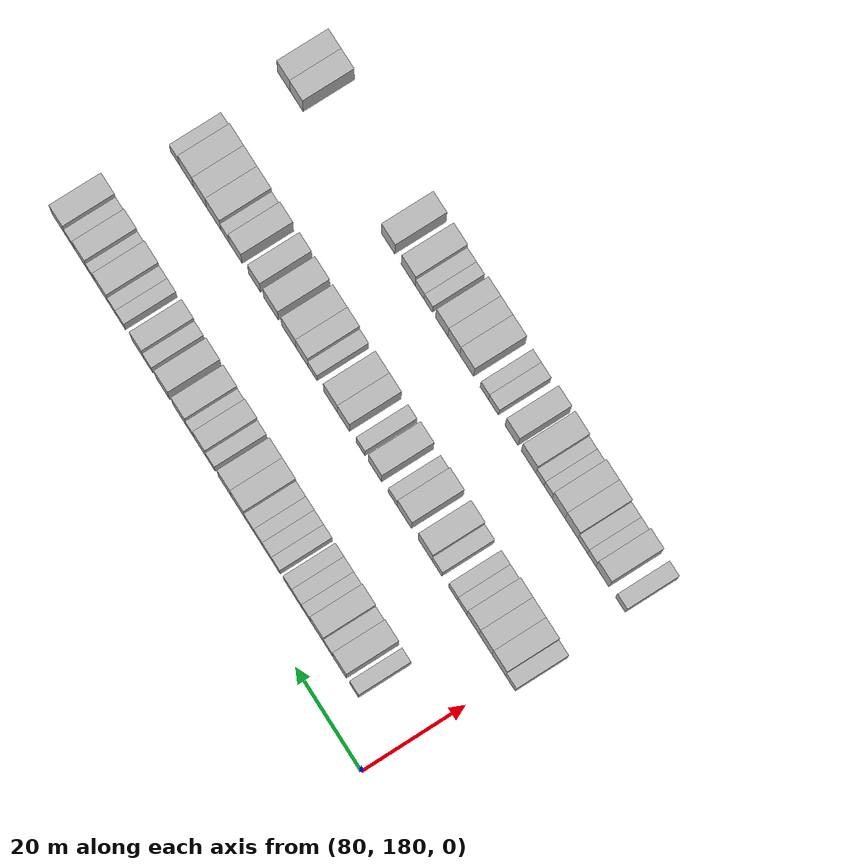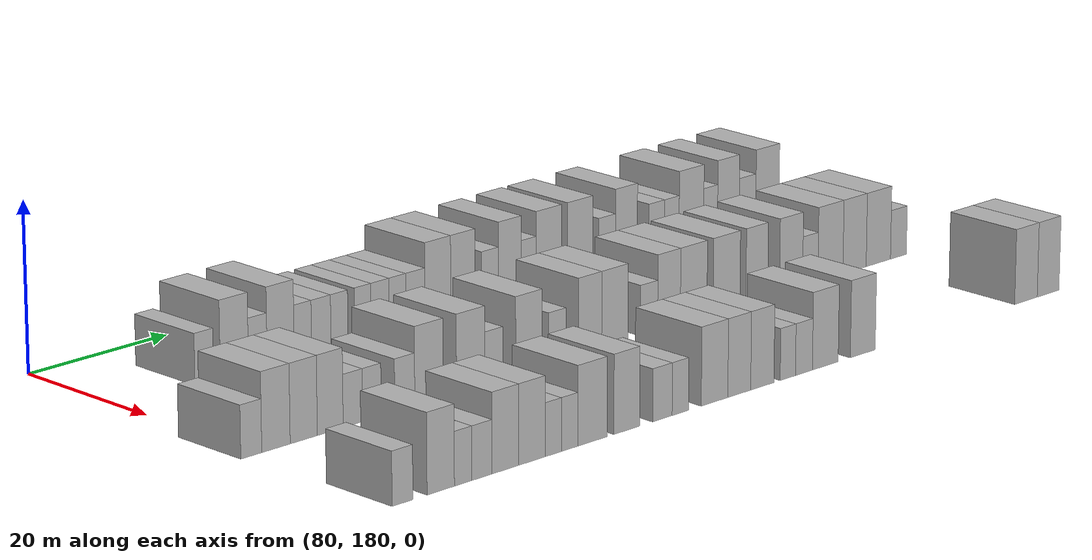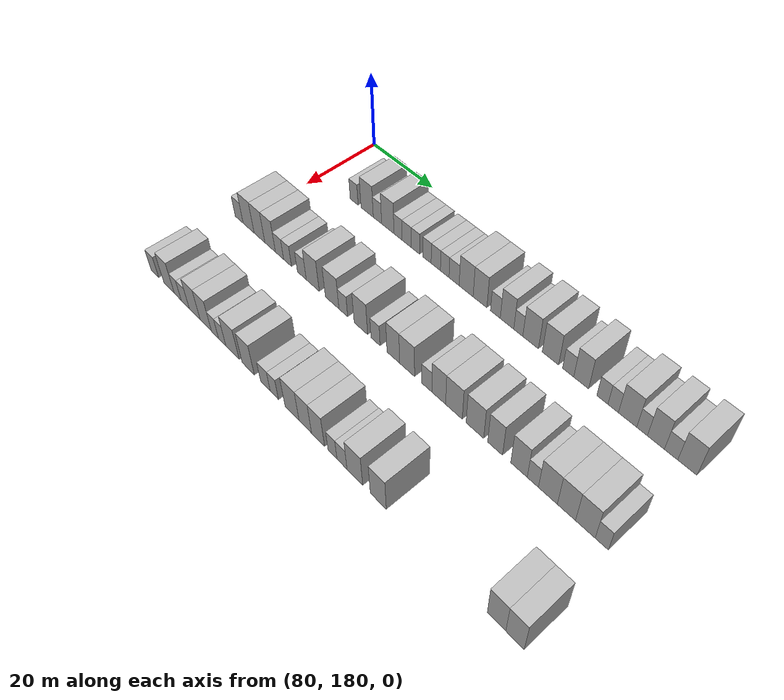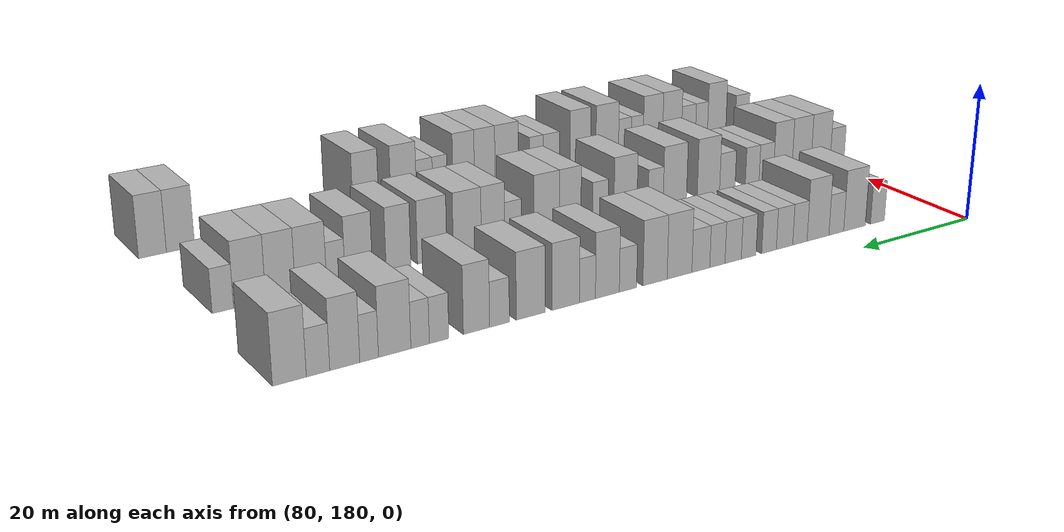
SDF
<sdf version="1.6">
 <world name="default">
  <model name="building_678">
   <static>1</static>
   <pose>91.0000 191.7139 0 0.000000 0.000000 0.000000</pose>
   <link name="link">
    <pose>0 0 3.00 0 0 0</pose>
    <collision name="collision"><geometry><box><size>10.0000 2.7009 6.0000</size></box></geometry></collision>
    <visual name="visual">
     <cast_shadows>0</cast_shadows>
     <geometry><box><size>10.0000 2.7009 6.0000</size></box></geometry>
     <material>
      <script>
       <uri>model://HANNAS_wall/materials/scripts</uri>
       <uri>model://HANNAS_wall/materials/textures</uri>
       <name>vrc/HANNAS_wall</name>
      </script>
     </material>
    </visual>
   </link>
  </model>
  <model name="building_679">
   <static>1</static>
   <pose>91.0000 196.1281 0 0.000000 0.000000 0.000000</pose>
   <link name="link">
    <pose>0 0 4.50 0 0 0</pose>
    <collision name="collision"><geometry><box><size>10.0000 4.1275 9.0000</size></box></geometry></collision>
    <visual name="visual">
     <cast_shadows>0</cast_shadows>
     <geometry><box><size>10.0000 4.1275 9.0000</size></box></geometry>
     <material>
      <script>
       <uri>model://HANNAS_wall/materials/scripts</uri>
       <uri>model://HANNAS_wall/materials/textures</uri>
       <name>vrc/HANNAS_wall</name>
      </script>
     </material>
    </visual>
   </link>
  </model>
  <model name="building_680">
   <static>1</static>
   <pose>91.0000 199.5762 0 0.000000 0.000000 0.000000</pose>
   <link name="link">
    <pose>0 0 3.00 0 0 0</pose>
    <collision name="collision"><geometry><box><size>10.0000 2.7685 6.0000</size></box></geometry></collision>
    <visual name="visual">
     <cast_shadows>0</cast_shadows>
     <geometry><box><size>10.0000 2.7685 6.0000</size></box></geometry>
     <material>
      <script>
       <uri>model://HANNAS_wall/materials/scripts</uri>
       <uri>model://HANNAS_wall/materials/textures</uri>
       <name>vrc/HANNAS_wall</name>
      </script>
     </material>
    </visual>
   </link>
  </model>
  <model name="building_681">
   <static>1</static>
   <pose>91.0000 202.9793 0 0.000000 0.000000 0.000000</pose>
   <link name="link">
    <pose>0 0 4.50 0 0 0</pose>
    <collision name="collision"><geometry><box><size>10.0000 4.0378 9.0000</size></box></geometry></collision>
    <visual name="visual">
     <cast_shadows>0</cast_shadows>
     <geometry><box><size>10.0000 4.0378 9.0000</size></box></geometry>
     <material>
      <script>
       <uri>model://HANNAS_wall/materials/scripts</uri>
       <uri>model://HANNAS_wall/materials/textures</uri>
       <name>vrc/HANNAS_wall</name>
      </script>
     </material>
    </visual>
   </link>
  </model>
  <model name="building_682">
   <static>1</static>
   <pose>91.0000 206.3023 0 0.000000 0.000000 0.000000</pose>
   <link name="link">
    <pose>0 0 3.00 0 0 0</pose>
    <collision name="collision"><geometry><box><size>10.0000 2.6081 6.0000</size></box></geometry></collision>
    <visual name="visual">
     <cast_shadows>0</cast_shadows>
     <geometry><box><size>10.0000 2.6081 6.0000</size></box></geometry>
     <material>
      <script>
       <uri>model://HANNAS_wall/materials/scripts</uri>
       <uri>model://HANNAS_wall/materials/textures</uri>
       <name>vrc/HANNAS_wall</name>
      </script>
     </material>
    </visual>
   </link>
  </model>
  <model name="building_683">
   <static>1</static>
   <pose>91.0000 209.0766 0 0.000000 0.000000 0.000000</pose>
   <link name="link">
    <pose>0 0 3.00 0 0 0</pose>
    <collision name="collision"><geometry><box><size>10.0000 2.9406 6.0000</size></box></geometry></collision>
    <visual name="visual">
     <cast_shadows>0</cast_shadows>
     <geometry><box><size>10.0000 2.9406 6.0000</size></box></geometry>
     <material>
      <script>
       <uri>model://HANNAS_wall/materials/scripts</uri>
       <uri>model://HANNAS_wall/materials/textures</uri>
       <name>vrc/HANNAS_wall</name>
      </script>
     </material>
    </visual>
   </link>
  </model>
  <model name="building_684">
   <static>1</static>
   <pose>91.0000 211.8414 0 0.000000 0.000000 0.000000</pose>
   <link name="link">
    <pose>0 0 3.00 0 0 0</pose>
    <collision name="collision"><geometry><box><size>10.0000 2.5890 6.0000</size></box></geometry></collision>
    <visual name="visual">
     <cast_shadows>0</cast_shadows>
     <geometry><box><size>10.0000 2.5890 6.0000</size></box></geometry>
     <material>
      <script>
       <uri>model://HANNAS_wall/materials/scripts</uri>
       <uri>model://HANNAS_wall/materials/textures</uri>
       <name>vrc/HANNAS_wall</name>
      </script>
     </material>
    </visual>
   </link>
  </model>
  <model name="building_685">
   <static>1</static>
   <pose>91.0000 215.4160 0 0.000000 0.000000 0.000000</pose>
   <link name="link">
    <pose>0 0 3.00 0 0 0</pose>
    <collision name="collision"><geometry><box><size>10.0000 2.5601 6.0000</size></box></geometry></collision>
    <visual name="visual">
     <cast_shadows>0</cast_shadows>
     <geometry><box><size>10.0000 2.5601 6.0000</size></box></geometry>
     <material>
      <script>
       <uri>model://HANNAS_wall/materials/scripts</uri>
       <uri>model://HANNAS_wall/materials/textures</uri>
       <name>vrc/HANNAS_wall</name>
      </script>
     </material>
    </visual>
   </link>
  </model>
  <model name="building_686">
   <static>1</static>
   <pose>91.0000 218.0968 0 0.000000 0.000000 0.000000</pose>
   <link name="link">
    <pose>0 0 3.00 0 0 0</pose>
    <collision name="collision"><geometry><box><size>10.0000 2.8015 6.0000</size></box></geometry></collision>
    <visual name="visual">
     <cast_shadows>0</cast_shadows>
     <geometry><box><size>10.0000 2.8015 6.0000</size></box></geometry>
     <material>
      <script>
       <uri>model://HANNAS_wall/materials/scripts</uri>
       <uri>model://HANNAS_wall/materials/textures</uri>
       <name>vrc/HANNAS_wall</name>
      </script>
     </material>
    </visual>
   </link>
  </model>
  <model name="building_687">
   <static>1</static>
   <pose>91.0000 220.7923 0 0.000000 0.000000 0.000000</pose>
   <link name="link">
    <pose>0 0 3.00 0 0 0</pose>
    <collision name="collision"><geometry><box><size>10.0000 2.5897 6.0000</size></box></geometry></collision>
    <visual name="visual">
     <cast_shadows>0</cast_shadows>
     <geometry><box><size>10.0000 2.5897 6.0000</size></box></geometry>
     <material>
      <script>
       <uri>model://HANNAS_wall/materials/scripts</uri>
       <uri>model://HANNAS_wall/materials/textures</uri>
       <name>vrc/HANNAS_wall</name>
      </script>
     </material>
    </visual>
   </link>
  </model>
  <model name="building_688">
   <static>1</static>
   <pose>91.0000 223.5781 0 0.000000 0.000000 0.000000</pose>
   <link name="link">
    <pose>0 0 3.00 0 0 0</pose>
    <collision name="collision"><geometry><box><size>10.0000 2.9819 6.0000</size></box></geometry></collision>
    <visual name="visual">
     <cast_shadows>0</cast_shadows>
     <geometry><box><size>10.0000 2.9819 6.0000</size></box></geometry>
     <material>
      <script>
       <uri>model://HANNAS_wall/materials/scripts</uri>
       <uri>model://HANNAS_wall/materials/textures</uri>
       <name>vrc/HANNAS_wall</name>
      </script>
     </material>
    </visual>
   </link>
  </model>
  <model name="building_689">
   <static>1</static>
   <pose>91.0000 227.1036 0 0.000000 0.000000 0.000000</pose>
   <link name="link">
    <pose>0 0 4.50 0 0 0</pose>
    <collision name="collision"><geometry><box><size>10.0000 4.0691 9.0000</size></box></geometry></collision>
    <visual name="visual">
     <cast_shadows>0</cast_shadows>
     <geometry><box><size>10.0000 4.0691 9.0000</size></box></geometry>
     <material>
      <script>
       <uri>model://HANNAS_wall/materials/scripts</uri>
       <uri>model://HANNAS_wall/materials/textures</uri>
       <name>vrc/HANNAS_wall</name>
      </script>
     </material>
    </visual>
   </link>
  </model>
  <model name="building_690">
   <static>1</static>
   <pose>91.0000 231.0882 0 0.000000 0.000000 0.000000</pose>
   <link name="link">
    <pose>0 0 4.50 0 0 0</pose>
    <collision name="collision"><geometry><box><size>10.0000 3.9003 9.0000</size></box></geometry></collision>
    <visual name="visual">
     <cast_shadows>0</cast_shadows>
     <geometry><box><size>10.0000 3.9003 9.0000</size></box></geometry>
     <material>
      <script>
       <uri>model://HANNAS_wall/materials/scripts</uri>
       <uri>model://HANNAS_wall/materials/textures</uri>
       <name>vrc/HANNAS_wall</name>
      </script>
     </material>
    </visual>
   </link>
  </model>
  <model name="building_691">
   <static>1</static>
   <pose>91.0000 235.3992 0 0.000000 0.000000 0.000000</pose>
   <link name="link">
    <pose>0 0 3.00 0 0 0</pose>
    <collision name="collision"><geometry><box><size>10.0000 2.7217 6.0000</size></box></geometry></collision>
    <visual name="visual">
     <cast_shadows>0</cast_shadows>
     <geometry><box><size>10.0000 2.7217 6.0000</size></box></geometry>
     <material>
      <script>
       <uri>model://HANNAS_wall/materials/scripts</uri>
       <uri>model://HANNAS_wall/materials/textures</uri>
       <name>vrc/HANNAS_wall</name>
      </script>
     </material>
    </visual>
   </link>
  </model>
  <model name="building_692">
   <static>1</static>
   <pose>91.0000 238.6087 0 0.000000 0.000000 0.000000</pose>
   <link name="link">
    <pose>0 0 4.50 0 0 0</pose>
    <collision name="collision"><geometry><box><size>10.0000 3.6974 9.0000</size></box></geometry></collision>
    <visual name="visual">
     <cast_shadows>0</cast_shadows>
     <geometry><box><size>10.0000 3.6974 9.0000</size></box></geometry>
     <material>
      <script>
       <uri>model://HANNAS_wall/materials/scripts</uri>
       <uri>model://HANNAS_wall/materials/textures</uri>
       <name>vrc/HANNAS_wall</name>
      </script>
     </material>
    </visual>
   </link>
  </model>
  <model name="building_693">
   <static>1</static>
   <pose>91.0000 241.6729 0 0.000000 0.000000 0.000000</pose>
   <link name="link">
    <pose>0 0 3.00 0 0 0</pose>
    <collision name="collision"><geometry><box><size>10.0000 2.4309 6.0000</size></box></geometry></collision>
    <visual name="visual">
     <cast_shadows>0</cast_shadows>
     <geometry><box><size>10.0000 2.4309 6.0000</size></box></geometry>
     <material>
      <script>
       <uri>model://HANNAS_wall/materials/scripts</uri>
       <uri>model://HANNAS_wall/materials/textures</uri>
       <name>vrc/HANNAS_wall</name>
      </script>
     </material>
    </visual>
   </link>
  </model>
  <model name="building_694">
   <static>1</static>
   <pose>91.0000 244.9547 0 0.000000 0.000000 0.000000</pose>
   <link name="link">
    <pose>0 0 4.50 0 0 0</pose>
    <collision name="collision"><geometry><box><size>10.0000 4.1327 9.0000</size></box></geometry></collision>
    <visual name="visual">
     <cast_shadows>0</cast_shadows>
     <geometry><box><size>10.0000 4.1327 9.0000</size></box></geometry>
     <material>
      <script>
       <uri>model://HANNAS_wall/materials/scripts</uri>
       <uri>model://HANNAS_wall/materials/textures</uri>
       <name>vrc/HANNAS_wall</name>
      </script>
     </material>
    </visual>
   </link>
  </model>
  <model name="building_695">
   <static>1</static>
   <pose>91.0000 250.1242 0 0.000000 0.000000 0.000000</pose>
   <link name="link">
    <pose>0 0 4.50 0 0 0</pose>
    <collision name="collision"><geometry><box><size>10.0000 4.2064 9.0000</size></box></geometry></collision>
    <visual name="visual">
     <cast_shadows>0</cast_shadows>
     <geometry><box><size>10.0000 4.2064 9.0000</size></box></geometry>
     <material>
      <script>
       <uri>model://HANNAS_wall/materials/scripts</uri>
       <uri>model://HANNAS_wall/materials/textures</uri>
       <name>vrc/HANNAS_wall</name>
      </script>
     </material>
    </visual>
   </link>
  </model>
  <model name="building_696">
   <static>1</static>
   <pose>91.0000 254.6271 0 0.000000 0.000000 0.000000</pose>
   <link name="link">
    <pose>0 0 3.00 0 0 0</pose>
    <collision name="collision"><geometry><box><size>10.0000 2.7995 6.0000</size></box></geometry></collision>
    <visual name="visual">
     <cast_shadows>0</cast_shadows>
     <geometry><box><size>10.0000 2.7995 6.0000</size></box></geometry>
     <material>
      <script>
       <uri>model://HANNAS_wall/materials/scripts</uri>
       <uri>model://HANNAS_wall/materials/textures</uri>
       <name>vrc/HANNAS_wall</name>
      </script>
     </material>
    </visual>
   </link>
  </model>
  <model name="building_697">
   <static>1</static>
   <pose>91.0000 257.8611 0 0.000000 0.000000 0.000000</pose>
   <link name="link">
    <pose>0 0 4.50 0 0 0</pose>
    <collision name="collision"><geometry><box><size>10.0000 3.6685 9.0000</size></box></geometry></collision>
    <visual name="visual">
     <cast_shadows>0</cast_shadows>
     <geometry><box><size>10.0000 3.6685 9.0000</size></box></geometry>
     <material>
      <script>
       <uri>model://HANNAS_wall/materials/scripts</uri>
       <uri>model://HANNAS_wall/materials/textures</uri>
       <name>vrc/HANNAS_wall</name>
      </script>
     </material>
    </visual>
   </link>
  </model>
  <model name="building_698">
   <static>1</static>
   <pose>91.0000 263.0228 0 0.000000 0.000000 0.000000</pose>
   <link name="link">
    <pose>0 0 3.00 0 0 0</pose>
    <collision name="collision"><geometry><box><size>10.0000 2.6548 6.0000</size></box></geometry></collision>
    <visual name="visual">
     <cast_shadows>0</cast_shadows>
     <geometry><box><size>10.0000 2.6548 6.0000</size></box></geometry>
     <material>
      <script>
       <uri>model://HANNAS_wall/materials/scripts</uri>
       <uri>model://HANNAS_wall/materials/textures</uri>
       <name>vrc/HANNAS_wall</name>
      </script>
     </material>
    </visual>
   </link>
  </model>
  <model name="building_699">
   <static>1</static>
   <pose>91.0000 265.5856 0 0.000000 0.000000 0.000000</pose>
   <link name="link">
    <pose>0 0 3.00 0 0 0</pose>
    <collision name="collision"><geometry><box><size>10.0000 2.4708 6.0000</size></box></geometry></collision>
    <visual name="visual">
     <cast_shadows>0</cast_shadows>
     <geometry><box><size>10.0000 2.4708 6.0000</size></box></geometry>
     <material>
      <script>
       <uri>model://HANNAS_wall/materials/scripts</uri>
       <uri>model://HANNAS_wall/materials/textures</uri>
       <name>vrc/HANNAS_wall</name>
      </script>
     </material>
    </visual>
   </link>
  </model>
  <model name="building_700">
   <static>1</static>
   <pose>91.0000 268.9508 0 0.000000 0.000000 0.000000</pose>
   <link name="link">
    <pose>0 0 4.50 0 0 0</pose>
    <collision name="collision"><geometry><box><size>10.0000 4.2597 9.0000</size></box></geometry></collision>
    <visual name="visual">
     <cast_shadows>0</cast_shadows>
     <geometry><box><size>10.0000 4.2597 9.0000</size></box></geometry>
     <material>
      <script>
       <uri>model://HANNAS_wall/materials/scripts</uri>
       <uri>model://HANNAS_wall/materials/textures</uri>
       <name>vrc/HANNAS_wall</name>
      </script>
     </material>
    </visual>
   </link>
  </model>
  <model name="building_701">
   <static>1</static>
   <pose>91.0000 272.2850 0 0.000000 0.000000 0.000000</pose>
   <link name="link">
    <pose>0 0 3.00 0 0 0</pose>
    <collision name="collision"><geometry><box><size>10.0000 2.4087 6.0000</size></box></geometry></collision>
    <visual name="visual">
     <cast_shadows>0</cast_shadows>
     <geometry><box><size>10.0000 2.4087 6.0000</size></box></geometry>
     <material>
      <script>
       <uri>model://HANNAS_wall/materials/scripts</uri>
       <uri>model://HANNAS_wall/materials/textures</uri>
       <name>vrc/HANNAS_wall</name>
      </script>
     </material>
    </visual>
   </link>
  </model>
  <model name="building_702">
   <static>1</static>
   <pose>91.0000 275.3910 0 0.000000 0.000000 0.000000</pose>
   <link name="link">
    <pose>0 0 4.50 0 0 0</pose>
    <collision name="collision"><geometry><box><size>10.0000 3.8033 9.0000</size></box></geometry></collision>
    <visual name="visual">
     <cast_shadows>0</cast_shadows>
     <geometry><box><size>10.0000 3.8033 9.0000</size></box></geometry>
     <material>
      <script>
       <uri>model://HANNAS_wall/materials/scripts</uri>
       <uri>model://HANNAS_wall/materials/textures</uri>
       <name>vrc/HANNAS_wall</name>
      </script>
     </material>
    </visual>
   </link>
  </model>
  <model name="building_703">
   <static>1</static>
   <pose>91.0000 278.7537 0 0.000000 0.000000 0.000000</pose>
   <link name="link">
    <pose>0 0 3.00 0 0 0</pose>
    <collision name="collision"><geometry><box><size>10.0000 2.9221 6.0000</size></box></geometry></collision>
    <visual name="visual">
     <cast_shadows>0</cast_shadows>
     <geometry><box><size>10.0000 2.9221 6.0000</size></box></geometry>
     <material>
      <script>
       <uri>model://HANNAS_wall/materials/scripts</uri>
       <uri>model://HANNAS_wall/materials/textures</uri>
       <name>vrc/HANNAS_wall</name>
      </script>
     </material>
    </visual>
   </link>
  </model>
  <model name="building_704">
   <static>1</static>
   <pose>91.0000 282.2822 0 0.000000 0.000000 0.000000</pose>
   <link name="link">
    <pose>0 0 4.50 0 0 0</pose>
    <collision name="collision"><geometry><box><size>10.0000 4.1350 9.0000</size></box></geometry></collision>
    <visual name="visual">
     <cast_shadows>0</cast_shadows>
     <geometry><box><size>10.0000 4.1350 9.0000</size></box></geometry>
     <material>
      <script>
       <uri>model://HANNAS_wall/materials/scripts</uri>
       <uri>model://HANNAS_wall/materials/textures</uri>
       <name>vrc/HANNAS_wall</name>
      </script>
     </material>
    </visual>
   </link>
  </model>
  <model name="building_871">
   <static>1</static>
   <pose>113.0000 179.1065 0 0.000000 0.000000 0.000000</pose>
   <link name="link">
    <pose>0 0 3.00 0 0 0</pose>
    <collision name="collision"><geometry><box><size>10.0000 2.9471 6.0000</size></box></geometry></collision>
    <visual name="visual">
     <cast_shadows>0</cast_shadows>
     <geometry><box><size>10.0000 2.9471 6.0000</size></box></geometry>
     <material>
      <script>
       <uri>model://HANNAS_wall/materials/scripts</uri>
       <uri>model://HANNAS_wall/materials/textures</uri>
       <name>vrc/HANNAS_wall</name>
      </script>
     </material>
    </visual>
   </link>
  </model>
  <model name="building_872">
   <static>1</static>
   <pose>113.0000 182.5959 0 0.000000 0.000000 0.000000</pose>
   <link name="link">
    <pose>0 0 4.50 0 0 0</pose>
    <collision name="collision"><geometry><box><size>10.0000 4.0319 9.0000</size></box></geometry></collision>
    <visual name="visual">
     <cast_shadows>0</cast_shadows>
     <geometry><box><size>10.0000 4.0319 9.0000</size></box></geometry>
     <material>
      <script>
       <uri>model://HANNAS_wall/materials/scripts</uri>
       <uri>model://HANNAS_wall/materials/textures</uri>
       <name>vrc/HANNAS_wall</name>
      </script>
     </material>
    </visual>
   </link>
  </model>
  <model name="building_873">
   <static>1</static>
   <pose>113.0000 186.5552 0 0.000000 0.000000 0.000000</pose>
   <link name="link">
    <pose>0 0 4.50 0 0 0</pose>
    <collision name="collision"><geometry><box><size>10.0000 3.8867 9.0000</size></box></geometry></collision>
    <visual name="visual">
     <cast_shadows>0</cast_shadows>
     <geometry><box><size>10.0000 3.8867 9.0000</size></box></geometry>
     <material>
      <script>
       <uri>model://HANNAS_wall/materials/scripts</uri>
       <uri>model://HANNAS_wall/materials/textures</uri>
       <name>vrc/HANNAS_wall</name>
      </script>
     </material>
    </visual>
   </link>
  </model>
  <model name="building_874">
   <static>1</static>
   <pose>113.0000 190.3626 0 0.000000 0.000000 0.000000</pose>
   <link name="link">
    <pose>0 0 4.50 0 0 0</pose>
    <collision name="collision"><geometry><box><size>10.0000 3.7280 9.0000</size></box></geometry></collision>
    <visual name="visual">
     <cast_shadows>0</cast_shadows>
     <geometry><box><size>10.0000 3.7280 9.0000</size></box></geometry>
     <material>
      <script>
       <uri>model://HANNAS_wall/materials/scripts</uri>
       <uri>model://HANNAS_wall/materials/textures</uri>
       <name>vrc/HANNAS_wall</name>
      </script>
     </material>
    </visual>
   </link>
  </model>
  <model name="building_875">
   <static>1</static>
   <pose>113.0000 193.6493 0 0.000000 0.000000 0.000000</pose>
   <link name="link">
    <pose>0 0 3.00 0 0 0</pose>
    <collision name="collision"><geometry><box><size>10.0000 2.8453 6.0000</size></box></geometry></collision>
    <visual name="visual">
     <cast_shadows>0</cast_shadows>
     <geometry><box><size>10.0000 2.8453 6.0000</size></box></geometry>
     <material>
      <script>
       <uri>model://HANNAS_wall/materials/scripts</uri>
       <uri>model://HANNAS_wall/materials/textures</uri>
       <name>vrc/HANNAS_wall</name>
      </script>
     </material>
    </visual>
   </link>
  </model>
  <model name="building_876">
   <static>1</static>
   <pose>113.0000 196.4271 0 0.000000 0.000000 0.000000</pose>
   <link name="link">
    <pose>0 0 3.00 0 0 0</pose>
    <collision name="collision"><geometry><box><size>10.0000 2.7103 6.0000</size></box></geometry></collision>
    <visual name="visual">
     <cast_shadows>0</cast_shadows>
     <geometry><box><size>10.0000 2.7103 6.0000</size></box></geometry>
     <material>
      <script>
       <uri>model://HANNAS_wall/materials/scripts</uri>
       <uri>model://HANNAS_wall/materials/textures</uri>
       <name>vrc/HANNAS_wall</name>
      </script>
     </material>
    </visual>
   </link>
  </model>
  <model name="building_877">
   <static>1</static>
   <pose>113.0000 201.2703 0 0.000000 0.000000 0.000000</pose>
   <link name="link">
    <pose>0 0 3.00 0 0 0</pose>
    <collision name="collision"><geometry><box><size>10.0000 2.9761 6.0000</size></box></geometry></collision>
    <visual name="visual">
     <cast_shadows>0</cast_shadows>
     <geometry><box><size>10.0000 2.9761 6.0000</size></box></geometry>
     <material>
      <script>
       <uri>model://HANNAS_wall/materials/scripts</uri>
       <uri>model://HANNAS_wall/materials/textures</uri>
       <name>vrc/HANNAS_wall</name>
      </script>
     </material>
    </visual>
   </link>
  </model>
  <model name="building_878">
   <static>1</static>
   <pose>113.0000 204.8846 0 0.000000 0.000000 0.000000</pose>
   <link name="link">
    <pose>0 0 4.50 0 0 0</pose>
    <collision name="collision"><geometry><box><size>10.0000 4.2526 9.0000</size></box></geometry></collision>
    <visual name="visual">
     <cast_shadows>0</cast_shadows>
     <geometry><box><size>10.0000 4.2526 9.0000</size></box></geometry>
     <material>
      <script>
       <uri>model://HANNAS_wall/materials/scripts</uri>
       <uri>model://HANNAS_wall/materials/textures</uri>
       <name>vrc/HANNAS_wall</name>
      </script>
     </material>
    </visual>
   </link>
  </model>
  <model name="building_879">
   <static>1</static>
   <pose>113.0000 211.1680 0 0.000000 0.000000 0.000000</pose>
   <link name="link">
    <pose>0 0 4.50 0 0 0</pose>
    <collision name="collision"><geometry><box><size>10.0000 4.3141 9.0000</size></box></geometry></collision>
    <visual name="visual">
     <cast_shadows>0</cast_shadows>
     <geometry><box><size>10.0000 4.3141 9.0000</size></box></geometry>
     <material>
      <script>
       <uri>model://HANNAS_wall/materials/scripts</uri>
       <uri>model://HANNAS_wall/materials/textures</uri>
       <name>vrc/HANNAS_wall</name>
      </script>
     </material>
    </visual>
   </link>
  </model>
  <model name="building_880">
   <static>1</static>
   <pose>113.0000 214.6909 0 0.000000 0.000000 0.000000</pose>
   <link name="link">
    <pose>0 0 3.00 0 0 0</pose>
    <collision name="collision"><geometry><box><size>10.0000 2.7316 6.0000</size></box></geometry></collision>
    <visual name="visual">
     <cast_shadows>0</cast_shadows>
     <geometry><box><size>10.0000 2.7316 6.0000</size></box></geometry>
     <material>
      <script>
       <uri>model://HANNAS_wall/materials/scripts</uri>
       <uri>model://HANNAS_wall/materials/textures</uri>
       <name>vrc/HANNAS_wall</name>
      </script>
     </material>
    </visual>
   </link>
  </model>
  <model name="building_881">
   <static>1</static>
   <pose>113.0000 220.1013 0 0.000000 0.000000 0.000000</pose>
   <link name="link">
    <pose>0 0 4.50 0 0 0</pose>
    <collision name="collision"><geometry><box><size>10.0000 4.0893 9.0000</size></box></geometry></collision>
    <visual name="visual">
     <cast_shadows>0</cast_shadows>
     <geometry><box><size>10.0000 4.0893 9.0000</size></box></geometry>
     <material>
      <script>
       <uri>model://HANNAS_wall/materials/scripts</uri>
       <uri>model://HANNAS_wall/materials/textures</uri>
       <name>vrc/HANNAS_wall</name>
      </script>
     </material>
    </visual>
   </link>
  </model>
  <model name="building_882">
   <static>1</static>
   <pose>113.0000 224.5045 0 0.000000 0.000000 0.000000</pose>
   <link name="link">
    <pose>0 0 3.00 0 0 0</pose>
    <collision name="collision"><geometry><box><size>10.0000 2.7170 6.0000</size></box></geometry></collision>
    <visual name="visual">
     <cast_shadows>0</cast_shadows>
     <geometry><box><size>10.0000 2.7170 6.0000</size></box></geometry>
     <material>
      <script>
       <uri>model://HANNAS_wall/materials/scripts</uri>
       <uri>model://HANNAS_wall/materials/textures</uri>
       <name>vrc/HANNAS_wall</name>
      </script>
     </material>
    </visual>
   </link>
  </model>
  <model name="building_883">
   <static>1</static>
   <pose>113.0000 229.6908 0 0.000000 0.000000 0.000000</pose>
   <link name="link">
    <pose>0 0 4.50 0 0 0</pose>
    <collision name="collision"><geometry><box><size>10.0000 3.6558 9.0000</size></box></geometry></collision>
    <visual name="visual">
     <cast_shadows>0</cast_shadows>
     <geometry><box><size>10.0000 3.6558 9.0000</size></box></geometry>
     <material>
      <script>
       <uri>model://HANNAS_wall/materials/scripts</uri>
       <uri>model://HANNAS_wall/materials/textures</uri>
       <name>vrc/HANNAS_wall</name>
      </script>
     </material>
    </visual>
   </link>
  </model>
  <model name="building_884">
   <static>1</static>
   <pose>113.0000 233.6344 0 0.000000 0.000000 0.000000</pose>
   <link name="link">
    <pose>0 0 4.50 0 0 0</pose>
    <collision name="collision"><geometry><box><size>10.0000 4.2313 9.0000</size></box></geometry></collision>
    <visual name="visual">
     <cast_shadows>0</cast_shadows>
     <geometry><box><size>10.0000 4.2313 9.0000</size></box></geometry>
     <material>
      <script>
       <uri>model://HANNAS_wall/materials/scripts</uri>
       <uri>model://HANNAS_wall/materials/textures</uri>
       <name>vrc/HANNAS_wall</name>
      </script>
     </material>
    </visual>
   </link>
  </model>
  <model name="building_885">
   <static>1</static>
   <pose>113.0000 239.1325 0 0.000000 0.000000 0.000000</pose>
   <link name="link">
    <pose>0 0 3.00 0 0 0</pose>
    <collision name="collision"><geometry><box><size>10.0000 2.7649 6.0000</size></box></geometry></collision>
    <visual name="visual">
     <cast_shadows>0</cast_shadows>
     <geometry><box><size>10.0000 2.7649 6.0000</size></box></geometry>
     <material>
      <script>
       <uri>model://HANNAS_wall/materials/scripts</uri>
       <uri>model://HANNAS_wall/materials/textures</uri>
       <name>vrc/HANNAS_wall</name>
      </script>
     </material>
    </visual>
   </link>
  </model>
  <model name="building_886">
   <static>1</static>
   <pose>113.0000 242.3705 0 0.000000 0.000000 0.000000</pose>
   <link name="link">
    <pose>0 0 4.50 0 0 0</pose>
    <collision name="collision"><geometry><box><size>10.0000 3.7111 9.0000</size></box></geometry></collision>
    <visual name="visual">
     <cast_shadows>0</cast_shadows>
     <geometry><box><size>10.0000 3.7111 9.0000</size></box></geometry>
     <material>
      <script>
       <uri>model://HANNAS_wall/materials/scripts</uri>
       <uri>model://HANNAS_wall/materials/textures</uri>
       <name>vrc/HANNAS_wall</name>
      </script>
     </material>
    </visual>
   </link>
  </model>
  <model name="building_887">
   <static>1</static>
   <pose>113.0000 246.4187 0 0.000000 0.000000 0.000000</pose>
   <link name="link">
    <pose>0 0 4.50 0 0 0</pose>
    <collision name="collision"><geometry><box><size>10.0000 4.3854 9.0000</size></box></geometry></collision>
    <visual name="visual">
     <cast_shadows>0</cast_shadows>
     <geometry><box><size>10.0000 4.3854 9.0000</size></box></geometry>
     <material>
      <script>
       <uri>model://HANNAS_wall/materials/scripts</uri>
       <uri>model://HANNAS_wall/materials/textures</uri>
       <name>vrc/HANNAS_wall</name>
      </script>
     </material>
    </visual>
   </link>
  </model>
  <model name="building_888">
   <static>1</static>
   <pose>113.0000 251.8531 0 0.000000 0.000000 0.000000</pose>
   <link name="link">
    <pose>0 0 4.50 0 0 0</pose>
    <collision name="collision"><geometry><box><size>10.0000 4.4834 9.0000</size></box></geometry></collision>
    <visual name="visual">
     <cast_shadows>0</cast_shadows>
     <geometry><box><size>10.0000 4.4834 9.0000</size></box></geometry>
     <material>
      <script>
       <uri>model://HANNAS_wall/materials/scripts</uri>
       <uri>model://HANNAS_wall/materials/textures</uri>
       <name>vrc/HANNAS_wall</name>
      </script>
     </material>
    </visual>
   </link>
  </model>
  <model name="building_889">
   <static>1</static>
   <pose>113.0000 256.9342 0 0.000000 0.000000 0.000000</pose>
   <link name="link">
    <pose>0 0 4.50 0 0 0</pose>
    <collision name="collision"><geometry><box><size>10.0000 3.6788 9.0000</size></box></geometry></collision>
    <visual name="visual">
     <cast_shadows>0</cast_shadows>
     <geometry><box><size>10.0000 3.6788 9.0000</size></box></geometry>
     <material>
      <script>
       <uri>model://HANNAS_wall/materials/scripts</uri>
       <uri>model://HANNAS_wall/materials/textures</uri>
       <name>vrc/HANNAS_wall</name>
      </script>
     </material>
    </visual>
   </link>
  </model>
  <model name="building_890">
   <static>1</static>
   <pose>113.0000 262.7464 0 0.000000 0.000000 0.000000</pose>
   <link name="link">
    <pose>0 0 4.50 0 0 0</pose>
    <collision name="collision"><geometry><box><size>10.0000 3.9455 9.0000</size></box></geometry></collision>
    <visual name="visual">
     <cast_shadows>0</cast_shadows>
     <geometry><box><size>10.0000 3.9455 9.0000</size></box></geometry>
     <material>
      <script>
       <uri>model://HANNAS_wall/materials/scripts</uri>
       <uri>model://HANNAS_wall/materials/textures</uri>
       <name>vrc/HANNAS_wall</name>
      </script>
     </material>
    </visual>
   </link>
  </model>
  <model name="building_891">
   <static>1</static>
   <pose>113.0000 266.0357 0 0.000000 0.000000 0.000000</pose>
   <link name="link">
    <pose>0 0 3.00 0 0 0</pose>
    <collision name="collision"><geometry><box><size>10.0000 2.6331 6.0000</size></box></geometry></collision>
    <visual name="visual">
     <cast_shadows>0</cast_shadows>
     <geometry><box><size>10.0000 2.6331 6.0000</size></box></geometry>
     <material>
      <script>
       <uri>model://HANNAS_wall/materials/scripts</uri>
       <uri>model://HANNAS_wall/materials/textures</uri>
       <name>vrc/HANNAS_wall</name>
      </script>
     </material>
    </visual>
   </link>
  </model>
  <model name="building_892">
   <static>1</static>
   <pose>113.0000 269.5297 0 0.000000 0.000000 0.000000</pose>
   <link name="link">
    <pose>0 0 4.50 0 0 0</pose>
    <collision name="collision"><geometry><box><size>10.0000 4.3549 9.0000</size></box></geometry></collision>
    <visual name="visual">
     <cast_shadows>0</cast_shadows>
     <geometry><box><size>10.0000 4.3549 9.0000</size></box></geometry>
     <material>
      <script>
       <uri>model://HANNAS_wall/materials/scripts</uri>
       <uri>model://HANNAS_wall/materials/textures</uri>
       <name>vrc/HANNAS_wall</name>
      </script>
     </material>
    </visual>
   </link>
  </model>
  <model name="building_893">
   <static>1</static>
   <pose>113.0000 273.7430 0 0.000000 0.000000 0.000000</pose>
   <link name="link">
    <pose>0 0 4.50 0 0 0</pose>
    <collision name="collision"><geometry><box><size>10.0000 4.0717 9.0000</size></box></geometry></collision>
    <visual name="visual">
     <cast_shadows>0</cast_shadows>
     <geometry><box><size>10.0000 4.0717 9.0000</size></box></geometry>
     <material>
      <script>
       <uri>model://HANNAS_wall/materials/scripts</uri>
       <uri>model://HANNAS_wall/materials/textures</uri>
       <name>vrc/HANNAS_wall</name>
      </script>
     </material>
    </visual>
   </link>
  </model>
  <model name="building_894">
   <static>1</static>
   <pose>113.0000 277.9280 0 0.000000 0.000000 0.000000</pose>
   <link name="link">
    <pose>0 0 4.50 0 0 0</pose>
    <collision name="collision"><geometry><box><size>10.0000 4.2982 9.0000</size></box></geometry></collision>
    <visual name="visual">
     <cast_shadows>0</cast_shadows>
     <geometry><box><size>10.0000 4.2982 9.0000</size></box></geometry>
     <material>
      <script>
       <uri>model://HANNAS_wall/materials/scripts</uri>
       <uri>model://HANNAS_wall/materials/textures</uri>
       <name>vrc/HANNAS_wall</name>
      </script>
     </material>
    </visual>
   </link>
  </model>
  <model name="building_895">
   <static>1</static>
   <pose>113.0000 281.4927 0 0.000000 0.000000 0.000000</pose>
   <link name="link">
    <pose>0 0 3.00 0 0 0</pose>
    <collision name="collision"><geometry><box><size>10.0000 2.8313 6.0000</size></box></geometry></collision>
    <visual name="visual">
     <cast_shadows>0</cast_shadows>
     <geometry><box><size>10.0000 2.8313 6.0000</size></box></geometry>
     <material>
      <script>
       <uri>model://HANNAS_wall/materials/scripts</uri>
       <uri>model://HANNAS_wall/materials/textures</uri>
       <name>vrc/HANNAS_wall</name>
      </script>
     </material>
    </visual>
   </link>
  </model>
  <model name="building_1059">
   <static>1</static>
   <pose>135.0000 180.3201 0 0.000000 0.000000 0.000000</pose>
   <link name="link">
    <pose>0 0 3.00 0 0 0</pose>
    <collision name="collision"><geometry><box><size>10.0000 2.9305 6.0000</size></box></geometry></collision>
    <visual name="visual">
     <cast_shadows>0</cast_shadows>
     <geometry><box><size>10.0000 2.9305 6.0000</size></box></geometry>
     <material>
      <script>
       <uri>model://HANNAS_wall/materials/scripts</uri>
       <uri>model://HANNAS_wall/materials/textures</uri>
       <name>vrc/HANNAS_wall</name>
      </script>
     </material>
    </visual>
   </link>
  </model>
  <model name="building_1060">
   <static>1</static>
   <pose>135.0000 185.7328 0 0.000000 0.000000 0.000000</pose>
   <link name="link">
    <pose>0 0 4.50 0 0 0</pose>
    <collision name="collision"><geometry><box><size>10.0000 3.8950 9.0000</size></box></geometry></collision>
    <visual name="visual">
     <cast_shadows>0</cast_shadows>
     <geometry><box><size>10.0000 3.8950 9.0000</size></box></geometry>
     <material>
      <script>
       <uri>model://HANNAS_wall/materials/scripts</uri>
       <uri>model://HANNAS_wall/materials/textures</uri>
       <name>vrc/HANNAS_wall</name>
      </script>
     </material>
    </visual>
   </link>
  </model>
  <model name="building_1061">
   <static>1</static>
   <pose>135.0000 188.9393 0 0.000000 0.000000 0.000000</pose>
   <link name="link">
    <pose>0 0 3.00 0 0 0</pose>
    <collision name="collision"><geometry><box><size>10.0000 2.5179 6.0000</size></box></geometry></collision>
    <visual name="visual">
     <cast_shadows>0</cast_shadows>
     <geometry><box><size>10.0000 2.5179 6.0000</size></box></geometry>
     <material>
      <script>
       <uri>model://HANNAS_wall/materials/scripts</uri>
       <uri>model://HANNAS_wall/materials/textures</uri>
       <name>vrc/HANNAS_wall</name>
      </script>
     </material>
    </visual>
   </link>
  </model>
  <model name="building_1062">
   <static>1</static>
   <pose>135.0000 191.6569 0 0.000000 0.000000 0.000000</pose>
   <link name="link">
    <pose>0 0 3.00 0 0 0</pose>
    <collision name="collision"><geometry><box><size>10.0000 2.9172 6.0000</size></box></geometry></collision>
    <visual name="visual">
     <cast_shadows>0</cast_shadows>
     <geometry><box><size>10.0000 2.9172 6.0000</size></box></geometry>
     <material>
      <script>
       <uri>model://HANNAS_wall/materials/scripts</uri>
       <uri>model://HANNAS_wall/materials/textures</uri>
       <name>vrc/HANNAS_wall</name>
      </script>
     </material>
    </visual>
   </link>
  </model>
  <model name="building_1063">
   <static>1</static>
   <pose>135.0000 195.0578 0 0.000000 0.000000 0.000000</pose>
   <link name="link">
    <pose>0 0 4.50 0 0 0</pose>
    <collision name="collision"><geometry><box><size>10.0000 3.8845 9.0000</size></box></geometry></collision>
    <visual name="visual">
     <cast_shadows>0</cast_shadows>
     <geometry><box><size>10.0000 3.8845 9.0000</size></box></geometry>
     <material>
      <script>
       <uri>model://HANNAS_wall/materials/scripts</uri>
       <uri>model://HANNAS_wall/materials/textures</uri>
       <name>vrc/HANNAS_wall</name>
      </script>
     </material>
    </visual>
   </link>
  </model>
  <model name="building_1064">
   <static>1</static>
   <pose>135.0000 198.9514 0 0.000000 0.000000 0.000000</pose>
   <link name="link">
    <pose>0 0 4.50 0 0 0</pose>
    <collision name="collision"><geometry><box><size>10.0000 3.9027 9.0000</size></box></geometry></collision>
    <visual name="visual">
     <cast_shadows>0</cast_shadows>
     <geometry><box><size>10.0000 3.9027 9.0000</size></box></geometry>
     <material>
      <script>
       <uri>model://HANNAS_wall/materials/scripts</uri>
       <uri>model://HANNAS_wall/materials/textures</uri>
       <name>vrc/HANNAS_wall</name>
      </script>
     </material>
    </visual>
   </link>
  </model>
  <model name="building_1065">
   <static>1</static>
   <pose>135.0000 202.1080 0 0.000000 0.000000 0.000000</pose>
   <link name="link">
    <pose>0 0 3.00 0 0 0</pose>
    <collision name="collision"><geometry><box><size>10.0000 2.4106 6.0000</size></box></geometry></collision>
    <visual name="visual">
     <cast_shadows>0</cast_shadows>
     <geometry><box><size>10.0000 2.4106 6.0000</size></box></geometry>
     <material>
      <script>
       <uri>model://HANNAS_wall/materials/scripts</uri>
       <uri>model://HANNAS_wall/materials/textures</uri>
       <name>vrc/HANNAS_wall</name>
      </script>
     </material>
    </visual>
   </link>
  </model>
  <model name="building_1066">
   <static>1</static>
   <pose>135.0000 204.5517 0 0.000000 0.000000 0.000000</pose>
   <link name="link">
    <pose>0 0 3.00 0 0 0</pose>
    <collision name="collision"><geometry><box><size>10.0000 2.4768 6.0000</size></box></geometry></collision>
    <visual name="visual">
     <cast_shadows>0</cast_shadows>
     <geometry><box><size>10.0000 2.4768 6.0000</size></box></geometry>
     <material>
      <script>
       <uri>model://HANNAS_wall/materials/scripts</uri>
       <uri>model://HANNAS_wall/materials/textures</uri>
       <name>vrc/HANNAS_wall</name>
      </script>
     </material>
    </visual>
   </link>
  </model>
  <model name="building_1067">
   <static>1</static>
   <pose>135.0000 207.9891 0 0.000000 0.000000 0.000000</pose>
   <link name="link">
    <pose>0 0 4.50 0 0 0</pose>
    <collision name="collision"><geometry><box><size>10.0000 4.3979 9.0000</size></box></geometry></collision>
    <visual name="visual">
     <cast_shadows>0</cast_shadows>
     <geometry><box><size>10.0000 4.3979 9.0000</size></box></geometry>
     <material>
      <script>
       <uri>model://HANNAS_wall/materials/scripts</uri>
       <uri>model://HANNAS_wall/materials/textures</uri>
       <name>vrc/HANNAS_wall</name>
      </script>
     </material>
    </visual>
   </link>
  </model>
  <model name="building_1068">
   <static>1</static>
   <pose>135.0000 213.1538 0 0.000000 0.000000 0.000000</pose>
   <link name="link">
    <pose>0 0 4.50 0 0 0</pose>
    <collision name="collision"><geometry><box><size>10.0000 3.9314 9.0000</size></box></geometry></collision>
    <visual name="visual">
     <cast_shadows>0</cast_shadows>
     <geometry><box><size>10.0000 3.9314 9.0000</size></box></geometry>
     <material>
      <script>
       <uri>model://HANNAS_wall/materials/scripts</uri>
       <uri>model://HANNAS_wall/materials/textures</uri>
       <name>vrc/HANNAS_wall</name>
      </script>
     </material>
    </visual>
   </link>
  </model>
  <model name="building_1069">
   <static>1</static>
   <pose>135.0000 218.6190 0 0.000000 0.000000 0.000000</pose>
   <link name="link">
    <pose>0 0 3.00 0 0 0</pose>
    <collision name="collision"><geometry><box><size>10.0000 2.9991 6.0000</size></box></geometry></collision>
    <visual name="visual">
     <cast_shadows>0</cast_shadows>
     <geometry><box><size>10.0000 2.9991 6.0000</size></box></geometry>
     <material>
      <script>
       <uri>model://HANNAS_wall/materials/scripts</uri>
       <uri>model://HANNAS_wall/materials/textures</uri>
       <name>vrc/HANNAS_wall</name>
      </script>
     </material>
    </visual>
   </link>
  </model>
  <model name="building_1070">
   <static>1</static>
   <pose>135.0000 221.3894 0 0.000000 0.000000 0.000000</pose>
   <link name="link">
    <pose>0 0 3.00 0 0 0</pose>
    <collision name="collision"><geometry><box><size>10.0000 2.5415 6.0000</size></box></geometry></collision>
    <visual name="visual">
     <cast_shadows>0</cast_shadows>
     <geometry><box><size>10.0000 2.5415 6.0000</size></box></geometry>
     <material>
      <script>
       <uri>model://HANNAS_wall/materials/scripts</uri>
       <uri>model://HANNAS_wall/materials/textures</uri>
       <name>vrc/HANNAS_wall</name>
      </script>
     </material>
    </visual>
   </link>
  </model>
  <model name="building_1071">
   <static>1</static>
   <pose>135.0000 226.7537 0 0.000000 0.000000 0.000000</pose>
   <link name="link">
    <pose>0 0 4.50 0 0 0</pose>
    <collision name="collision"><geometry><box><size>10.0000 4.1872 9.0000</size></box></geometry></collision>
    <visual name="visual">
     <cast_shadows>0</cast_shadows>
     <geometry><box><size>10.0000 4.1872 9.0000</size></box></geometry>
     <material>
      <script>
       <uri>model://HANNAS_wall/materials/scripts</uri>
       <uri>model://HANNAS_wall/materials/textures</uri>
       <name>vrc/HANNAS_wall</name>
      </script>
     </material>
    </visual>
   </link>
  </model>
  <model name="building_1072">
   <static>1</static>
   <pose>135.0000 230.6672 0 0.000000 0.000000 0.000000</pose>
   <link name="link">
    <pose>0 0 4.50 0 0 0</pose>
    <collision name="collision"><geometry><box><size>10.0000 3.6398 9.0000</size></box></geometry></collision>
    <visual name="visual">
     <cast_shadows>0</cast_shadows>
     <geometry><box><size>10.0000 3.6398 9.0000</size></box></geometry>
     <material>
      <script>
       <uri>model://HANNAS_wall/materials/scripts</uri>
       <uri>model://HANNAS_wall/materials/textures</uri>
       <name>vrc/HANNAS_wall</name>
      </script>
     </material>
    </visual>
   </link>
  </model>
  <model name="building_1073">
   <static>1</static>
   <pose>135.0000 234.3495 0 0.000000 0.000000 0.000000</pose>
   <link name="link">
    <pose>0 0 4.50 0 0 0</pose>
    <collision name="collision"><geometry><box><size>10.0000 3.7248 9.0000</size></box></geometry></collision>
    <visual name="visual">
     <cast_shadows>0</cast_shadows>
     <geometry><box><size>10.0000 3.7248 9.0000</size></box></geometry>
     <material>
      <script>
       <uri>model://HANNAS_wall/materials/scripts</uri>
       <uri>model://HANNAS_wall/materials/textures</uri>
       <name>vrc/HANNAS_wall</name>
      </script>
     </material>
    </visual>
   </link>
  </model>
  <model name="building_1074">
   <static>1</static>
   <pose>135.0000 238.4509 0 0.000000 0.000000 0.000000</pose>
   <link name="link">
    <pose>0 0 3.00 0 0 0</pose>
    <collision name="collision"><geometry><box><size>10.0000 2.4781 6.0000</size></box></geometry></collision>
    <visual name="visual">
     <cast_shadows>0</cast_shadows>
     <geometry><box><size>10.0000 2.4781 6.0000</size></box></geometry>
     <material>
      <script>
       <uri>model://HANNAS_wall/materials/scripts</uri>
       <uri>model://HANNAS_wall/materials/textures</uri>
       <name>vrc/HANNAS_wall</name>
      </script>
     </material>
    </visual>
   </link>
  </model>
  <model name="building_1075">
   <static>1</static>
   <pose>135.0000 241.0693 0 0.000000 0.000000 0.000000</pose>
   <link name="link">
    <pose>0 0 3.00 0 0 0</pose>
    <collision name="collision"><geometry><box><size>10.0000 2.7586 6.0000</size></box></geometry></collision>
    <visual name="visual">
     <cast_shadows>0</cast_shadows>
     <geometry><box><size>10.0000 2.7586 6.0000</size></box></geometry>
     <material>
      <script>
       <uri>model://HANNAS_wall/materials/scripts</uri>
       <uri>model://HANNAS_wall/materials/textures</uri>
       <name>vrc/HANNAS_wall</name>
      </script>
     </material>
    </visual>
   </link>
  </model>
  <model name="building_1076">
   <static>1</static>
   <pose>135.0000 244.5695 0 0.000000 0.000000 0.000000</pose>
   <link name="link">
    <pose>0 0 4.50 0 0 0</pose>
    <collision name="collision"><geometry><box><size>10.0000 4.2418 9.0000</size></box></geometry></collision>
    <visual name="visual">
     <cast_shadows>0</cast_shadows>
     <geometry><box><size>10.0000 4.2418 9.0000</size></box></geometry>
     <material>
      <script>
       <uri>model://HANNAS_wall/materials/scripts</uri>
       <uri>model://HANNAS_wall/materials/textures</uri>
       <name>vrc/HANNAS_wall</name>
      </script>
     </material>
    </visual>
   </link>
  </model>
  <model name="building_1077">
   <static>1</static>
   <pose>135.0000 250.7672 0 0.000000 0.000000 0.000000</pose>
   <link name="link">
    <pose>0 0 4.50 0 0 0</pose>
    <collision name="collision"><geometry><box><size>10.0000 4.1536 9.0000</size></box></geometry></collision>
    <visual name="visual">
     <cast_shadows>0</cast_shadows>
     <geometry><box><size>10.0000 4.1536 9.0000</size></box></geometry>
     <material>
      <script>
       <uri>model://HANNAS_wall/materials/scripts</uri>
       <uri>model://HANNAS_wall/materials/textures</uri>
       <name>vrc/HANNAS_wall</name>
      </script>
     </material>
    </visual>
   </link>
  </model>
  <model name="building_1078">
   <static>1</static>
   <pose>135.0000 278.8545 0 0.000000 0.000000 0.000000</pose>
   <link name="link">
    <pose>0 0 4.50 0 0 0</pose>
    <collision name="collision"><geometry><box><size>10.0000 4.0070 9.0000</size></box></geometry></collision>
    <visual name="visual">
     <cast_shadows>0</cast_shadows>
     <geometry><box><size>10.0000 4.0070 9.0000</size></box></geometry>
     <material>
      <script>
       <uri>model://HANNAS_wall/materials/scripts</uri>
       <uri>model://HANNAS_wall/materials/textures</uri>
       <name>vrc/HANNAS_wall</name>
      </script>
     </material>
    </visual>
   </link>
  </model>
  <model name="building_1079">
   <static>1</static>
   <pose>135.0000 282.8050 0 0.000000 0.000000 0.000000</pose>
   <link name="link">
    <pose>0 0 4.50 0 0 0</pose>
    <collision name="collision"><geometry><box><size>10.0000 3.8941 9.0000</size></box></geometry></collision>
    <visual name="visual">
     <cast_shadows>0</cast_shadows>
     <geometry><box><size>10.0000 3.8941 9.0000</size></box></geometry>
     <material>
      <script>
       <uri>model://HANNAS_wall/materials/scripts</uri>
       <uri>model://HANNAS_wall/materials/textures</uri>
       <name>vrc/HANNAS_wall</name>
      </script>
     </material>
    </visual>
   </link>
  </model>
 </world>
</sdf>
